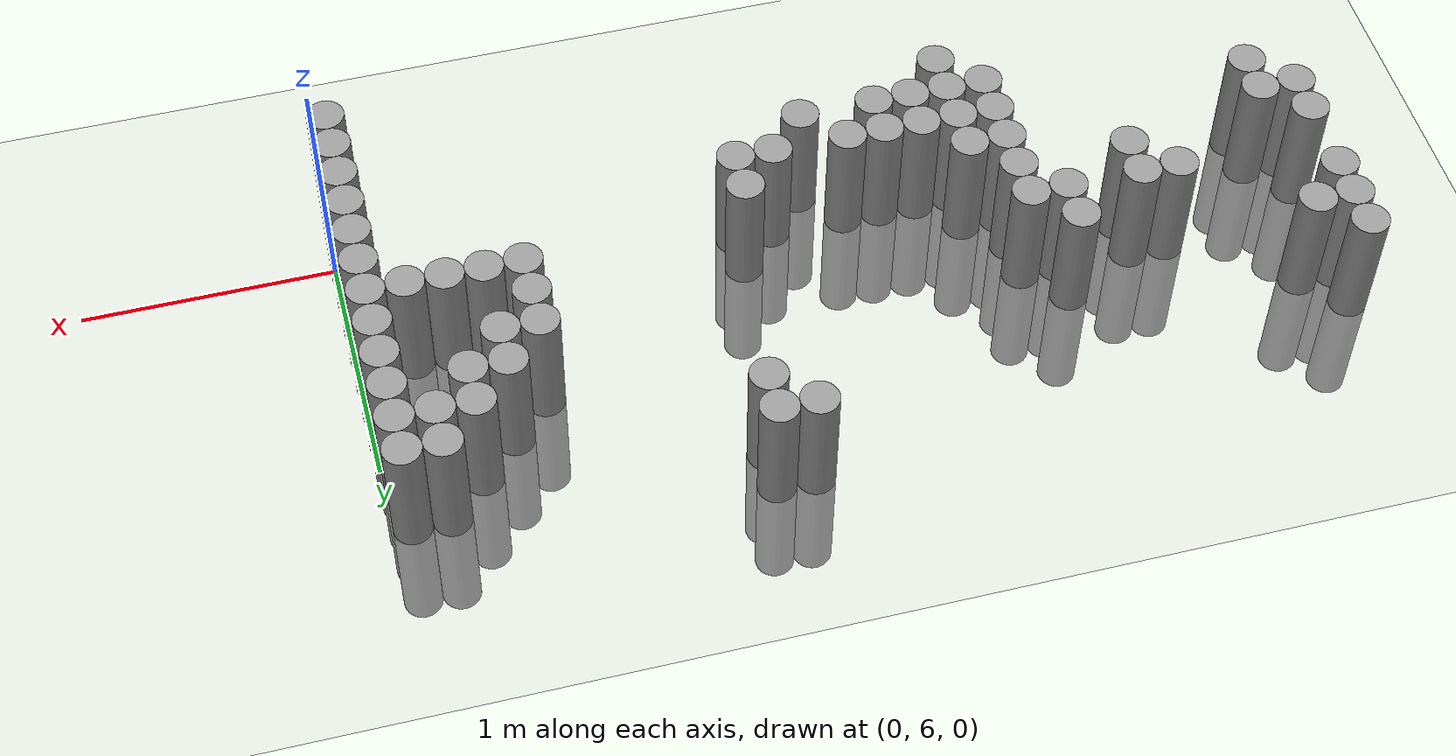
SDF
<sdf version="1.6">
 <world name="default">
  <model name="ground_plane">
   <static>1</static>
   <static>1</static>
   <link name="link">
    <collision name="collision">
     <geometry><plane><normal>0 0 1</normal><size>100 100</size></plane></geometry>
     <surface><friction><ode><mu>100</mu><mu2>50</mu2></ode></friction></surface>
    </collision>
    <visual name="visual">
     <cast_shadows>0</cast_shadows>
     <geometry><plane><normal>0 0 1</normal><size>100 100</size></plane></geometry>
     <material>
      <script><uri>file://media/materials/scripts/gazebo.material</uri><name>Gazebo/Grey</name></script>
     </material>
    </visual>
   </link>
  </model>
  <model name="unit_cylinder_160">
   <static>1</static>
   <pose>-3.825000 6.375000 0.000000 0.000000 0.000000 0.000000</pose>
   <link name="link">
    <inertial>
     <mass>1</mass>
     <inertia><ixx>0.145833</ixx><ixy>0</ixy><ixz>0</ixz><iyy>0.145833</iyy><iyz>0</iyz><izz>0.125</izz></inertia>
    </inertial>
    <collision name="collision">
     <geometry><cylinder><radius>0.075000</radius><length>1</length></cylinder></geometry>
    </collision>
    <visual name="visual">
     <geometry><cylinder><radius>0.075000</radius><length>1</length></cylinder></geometry>
     <material>
      <script><name>Gazebo/Grey</name><uri>file://media/materials/scripts/gazebo.material</uri></script>
     </material>
    </visual>
   </link>
  </model>
  <model name="unit_cylinder_161">
   <static>1</static>
   <pose>-3.825000 6.525000 0.000000 0.000000 0.000000 0.000000</pose>
   <link name="link">
    <inertial>
     <mass>1</mass>
     <inertia><ixx>0.145833</ixx><ixy>0</ixy><ixz>0</ixz><iyy>0.145833</iyy><iyz>0</iyz><izz>0.125</izz></inertia>
    </inertial>
    <collision name="collision">
     <geometry><cylinder><radius>0.075000</radius><length>1</length></cylinder></geometry>
    </collision>
    <visual name="visual">
     <geometry><cylinder><radius>0.075000</radius><length>1</length></cylinder></geometry>
     <material>
      <script><name>Gazebo/Grey</name><uri>file://media/materials/scripts/gazebo.material</uri></script>
     </material>
    </visual>
   </link>
  </model>
  <model name="unit_cylinder_162">
   <static>1</static>
   <pose>-3.825000 6.825000 0.000000 0.000000 0.000000 0.000000</pose>
   <link name="link">
    <inertial>
     <mass>1</mass>
     <inertia><ixx>0.145833</ixx><ixy>0</ixy><ixz>0</ixz><iyy>0.145833</iyy><iyz>0</iyz><izz>0.125</izz></inertia>
    </inertial>
    <collision name="collision">
     <geometry><cylinder><radius>0.075000</radius><length>1</length></cylinder></geometry>
    </collision>
    <visual name="visual">
     <geometry><cylinder><radius>0.075000</radius><length>1</length></cylinder></geometry>
     <material>
      <script><name>Gazebo/Grey</name><uri>file://media/materials/scripts/gazebo.material</uri></script>
     </material>
    </visual>
   </link>
  </model>
  <model name="unit_cylinder_163">
   <static>1</static>
   <pose>-3.825000 6.975000 0.000000 0.000000 0.000000 0.000000</pose>
   <link name="link">
    <inertial>
     <mass>1</mass>
     <inertia><ixx>0.145833</ixx><ixy>0</ixy><ixz>0</ixz><iyy>0.145833</iyy><iyz>0</iyz><izz>0.125</izz></inertia>
    </inertial>
    <collision name="collision">
     <geometry><cylinder><radius>0.075000</radius><length>1</length></cylinder></geometry>
    </collision>
    <visual name="visual">
     <geometry><cylinder><radius>0.075000</radius><length>1</length></cylinder></geometry>
     <material>
      <script><name>Gazebo/Grey</name><uri>file://media/materials/scripts/gazebo.material</uri></script>
     </material>
    </visual>
   </link>
  </model>
  <model name="unit_cylinder_164">
   <static>1</static>
   <pose>-3.825000 7.125000 0.000000 0.000000 0.000000 0.000000</pose>
   <link name="link">
    <inertial>
     <mass>1</mass>
     <inertia><ixx>0.145833</ixx><ixy>0</ixy><ixz>0</ixz><iyy>0.145833</iyy><iyz>0</iyz><izz>0.125</izz></inertia>
    </inertial>
    <collision name="collision">
     <geometry><cylinder><radius>0.075000</radius><length>1</length></cylinder></geometry>
    </collision>
    <visual name="visual">
     <geometry><cylinder><radius>0.075000</radius><length>1</length></cylinder></geometry>
     <material>
      <script><name>Gazebo/Grey</name><uri>file://media/materials/scripts/gazebo.material</uri></script>
     </material>
    </visual>
   </link>
  </model>
  <model name="unit_cylinder_167">
   <static>1</static>
   <pose>-3.675000 6.225000 0.000000 0.000000 0.000000 0.000000</pose>
   <link name="link">
    <inertial>
     <mass>1</mass>
     <inertia><ixx>0.145833</ixx><ixy>0</ixy><ixz>0</ixz><iyy>0.145833</iyy><iyz>0</iyz><izz>0.125</izz></inertia>
    </inertial>
    <collision name="collision">
     <geometry><cylinder><radius>0.075000</radius><length>1</length></cylinder></geometry>
    </collision>
    <visual name="visual">
     <geometry><cylinder><radius>0.075000</radius><length>1</length></cylinder></geometry>
     <material>
      <script><name>Gazebo/Grey</name><uri>file://media/materials/scripts/gazebo.material</uri></script>
     </material>
    </visual>
   </link>
  </model>
  <model name="unit_cylinder_168">
   <static>1</static>
   <pose>-3.675000 6.375000 0.000000 0.000000 0.000000 0.000000</pose>
   <link name="link">
    <inertial>
     <mass>1</mass>
     <inertia><ixx>0.145833</ixx><ixy>0</ixy><ixz>0</ixz><iyy>0.145833</iyy><iyz>0</iyz><izz>0.125</izz></inertia>
    </inertial>
    <collision name="collision">
     <geometry><cylinder><radius>0.075000</radius><length>1</length></cylinder></geometry>
    </collision>
    <visual name="visual">
     <geometry><cylinder><radius>0.075000</radius><length>1</length></cylinder></geometry>
     <material>
      <script><name>Gazebo/Grey</name><uri>file://media/materials/scripts/gazebo.material</uri></script>
     </material>
    </visual>
   </link>
  </model>
  <model name="unit_cylinder_169">
   <static>1</static>
   <pose>-3.675000 6.975000 0.000000 0.000000 0.000000 0.000000</pose>
   <link name="link">
    <inertial>
     <mass>1</mass>
     <inertia><ixx>0.145833</ixx><ixy>0</ixy><ixz>0</ixz><iyy>0.145833</iyy><iyz>0</iyz><izz>0.125</izz></inertia>
    </inertial>
    <collision name="collision">
     <geometry><cylinder><radius>0.075000</radius><length>1</length></cylinder></geometry>
    </collision>
    <visual name="visual">
     <geometry><cylinder><radius>0.075000</radius><length>1</length></cylinder></geometry>
     <material>
      <script><name>Gazebo/Grey</name><uri>file://media/materials/scripts/gazebo.material</uri></script>
     </material>
    </visual>
   </link>
  </model>
  <model name="unit_cylinder_170">
   <static>1</static>
   <pose>-3.225000 6.675000 0.000000 0.000000 0.000000 0.000000</pose>
   <link name="link">
    <inertial>
     <mass>1</mass>
     <inertia><ixx>0.145833</ixx><ixy>0</ixy><ixz>0</ixz><iyy>0.145833</iyy><iyz>0</iyz><izz>0.125</izz></inertia>
    </inertial>
    <collision name="collision">
     <geometry><cylinder><radius>0.075000</radius><length>1</length></cylinder></geometry>
    </collision>
    <visual name="visual">
     <geometry><cylinder><radius>0.075000</radius><length>1</length></cylinder></geometry>
     <material>
      <script><name>Gazebo/Grey</name><uri>file://media/materials/scripts/gazebo.material</uri></script>
     </material>
    </visual>
   </link>
  </model>
  <model name="unit_cylinder_173">
   <static>1</static>
   <pose>-3.075000 6.525000 0.000000 0.000000 0.000000 0.000000</pose>
   <link name="link">
    <inertial>
     <mass>1</mass>
     <inertia><ixx>0.145833</ixx><ixy>0</ixy><ixz>0</ixz><iyy>0.145833</iyy><iyz>0</iyz><izz>0.125</izz></inertia>
    </inertial>
    <collision name="collision">
     <geometry><cylinder><radius>0.075000</radius><length>1</length></cylinder></geometry>
    </collision>
    <visual name="visual">
     <geometry><cylinder><radius>0.075000</radius><length>1</length></cylinder></geometry>
     <material>
      <script><name>Gazebo/Grey</name><uri>file://media/materials/scripts/gazebo.material</uri></script>
     </material>
    </visual>
   </link>
  </model>
  <model name="unit_cylinder_174">
   <static>1</static>
   <pose>-3.075000 6.675000 0.000000 0.000000 0.000000 0.000000</pose>
   <link name="link">
    <inertial>
     <mass>1</mass>
     <inertia><ixx>0.145833</ixx><ixy>0</ixy><ixz>0</ixz><iyy>0.145833</iyy><iyz>0</iyz><izz>0.125</izz></inertia>
    </inertial>
    <collision name="collision">
     <geometry><cylinder><radius>0.075000</radius><length>1</length></cylinder></geometry>
    </collision>
    <visual name="visual">
     <geometry><cylinder><radius>0.075000</radius><length>1</length></cylinder></geometry>
     <material>
      <script><name>Gazebo/Grey</name><uri>file://media/materials/scripts/gazebo.material</uri></script>
     </material>
    </visual>
   </link>
  </model>
  <model name="unit_cylinder_181">
   <static>1</static>
   <pose>-2.775000 6.675000 0.000000 0.000000 0.000000 0.000000</pose>
   <link name="link">
    <inertial>
     <mass>1</mass>
     <inertia><ixx>0.145833</ixx><ixy>0</ixy><ixz>0</ixz><iyy>0.145833</iyy><iyz>0</iyz><izz>0.125</izz></inertia>
    </inertial>
    <collision name="collision">
     <geometry><cylinder><radius>0.075000</radius><length>1</length></cylinder></geometry>
    </collision>
    <visual name="visual">
     <geometry><cylinder><radius>0.075000</radius><length>1</length></cylinder></geometry>
     <material>
      <script><name>Gazebo/Grey</name><uri>file://media/materials/scripts/gazebo.material</uri></script>
     </material>
    </visual>
   </link>
  </model>
  <model name="unit_cylinder_182">
   <static>1</static>
   <pose>-2.775000 6.825000 0.000000 0.000000 0.000000 0.000000</pose>
   <link name="link">
    <inertial>
     <mass>1</mass>
     <inertia><ixx>0.145833</ixx><ixy>0</ixy><ixz>0</ixz><iyy>0.145833</iyy><iyz>0</iyz><izz>0.125</izz></inertia>
    </inertial>
    <collision name="collision">
     <geometry><cylinder><radius>0.075000</radius><length>1</length></cylinder></geometry>
    </collision>
    <visual name="visual">
     <geometry><cylinder><radius>0.075000</radius><length>1</length></cylinder></geometry>
     <material>
      <script><name>Gazebo/Grey</name><uri>file://media/materials/scripts/gazebo.material</uri></script>
     </material>
    </visual>
   </link>
  </model>
  <model name="unit_cylinder_184">
   <static>1</static>
   <pose>-2.625000 6.075000 0.000000 0.000000 0.000000 0.000000</pose>
   <link name="link">
    <inertial>
     <mass>1</mass>
     <inertia><ixx>0.145833</ixx><ixy>0</ixy><ixz>0</ixz><iyy>0.145833</iyy><iyz>0</iyz><izz>0.125</izz></inertia>
    </inertial>
    <collision name="collision">
     <geometry><cylinder><radius>0.075000</radius><length>1</length></cylinder></geometry>
    </collision>
    <visual name="visual">
     <geometry><cylinder><radius>0.075000</radius><length>1</length></cylinder></geometry>
     <material>
      <script><name>Gazebo/Grey</name><uri>file://media/materials/scripts/gazebo.material</uri></script>
     </material>
    </visual>
   </link>
  </model>
  <model name="unit_cylinder_185">
   <static>1</static>
   <pose>-2.625000 6.225000 0.000000 0.000000 0.000000 0.000000</pose>
   <link name="link">
    <inertial>
     <mass>1</mass>
     <inertia><ixx>0.145833</ixx><ixy>0</ixy><ixz>0</ixz><iyy>0.145833</iyy><iyz>0</iyz><izz>0.125</izz></inertia>
    </inertial>
    <collision name="collision">
     <geometry><cylinder><radius>0.075000</radius><length>1</length></cylinder></geometry>
    </collision>
    <visual name="visual">
     <geometry><cylinder><radius>0.075000</radius><length>1</length></cylinder></geometry>
     <material>
      <script><name>Gazebo/Grey</name><uri>file://media/materials/scripts/gazebo.material</uri></script>
     </material>
    </visual>
   </link>
  </model>
  <model name="unit_cylinder_186">
   <static>1</static>
   <pose>-2.625000 6.375000 0.000000 0.000000 0.000000 0.000000</pose>
   <link name="link">
    <inertial>
     <mass>1</mass>
     <inertia><ixx>0.145833</ixx><ixy>0</ixy><ixz>0</ixz><iyy>0.145833</iyy><iyz>0</iyz><izz>0.125</izz></inertia>
    </inertial>
    <collision name="collision">
     <geometry><cylinder><radius>0.075000</radius><length>1</length></cylinder></geometry>
    </collision>
    <visual name="visual">
     <geometry><cylinder><radius>0.075000</radius><length>1</length></cylinder></geometry>
     <material>
      <script><name>Gazebo/Grey</name><uri>file://media/materials/scripts/gazebo.material</uri></script>
     </material>
    </visual>
   </link>
  </model>
  <model name="unit_cylinder_187">
   <static>1</static>
   <pose>-2.625000 6.525000 0.000000 0.000000 0.000000 0.000000</pose>
   <link name="link">
    <inertial>
     <mass>1</mass>
     <inertia><ixx>0.145833</ixx><ixy>0</ixy><ixz>0</ixz><iyy>0.145833</iyy><iyz>0</iyz><izz>0.125</izz></inertia>
    </inertial>
    <collision name="collision">
     <geometry><cylinder><radius>0.075000</radius><length>1</length></cylinder></geometry>
    </collision>
    <visual name="visual">
     <geometry><cylinder><radius>0.075000</radius><length>1</length></cylinder></geometry>
     <material>
      <script><name>Gazebo/Grey</name><uri>file://media/materials/scripts/gazebo.material</uri></script>
     </material>
    </visual>
   </link>
  </model>
  <model name="unit_cylinder_188">
   <static>1</static>
   <pose>-2.625000 6.675000 0.000000 0.000000 0.000000 0.000000</pose>
   <link name="link">
    <inertial>
     <mass>1</mass>
     <inertia><ixx>0.145833</ixx><ixy>0</ixy><ixz>0</ixz><iyy>0.145833</iyy><iyz>0</iyz><izz>0.125</izz></inertia>
    </inertial>
    <collision name="collision">
     <geometry><cylinder><radius>0.075000</radius><length>1</length></cylinder></geometry>
    </collision>
    <visual name="visual">
     <geometry><cylinder><radius>0.075000</radius><length>1</length></cylinder></geometry>
     <material>
      <script><name>Gazebo/Grey</name><uri>file://media/materials/scripts/gazebo.material</uri></script>
     </material>
    </visual>
   </link>
  </model>
  <model name="unit_cylinder_189">
   <static>1</static>
   <pose>-2.475000 5.925000 0.000000 0.000000 0.000000 0.000000</pose>
   <link name="link">
    <inertial>
     <mass>1</mass>
     <inertia><ixx>0.145833</ixx><ixy>0</ixy><ixz>0</ixz><iyy>0.145833</iyy><iyz>0</iyz><izz>0.125</izz></inertia>
    </inertial>
    <collision name="collision">
     <geometry><cylinder><radius>0.075000</radius><length>1</length></cylinder></geometry>
    </collision>
    <visual name="visual">
     <geometry><cylinder><radius>0.075000</radius><length>1</length></cylinder></geometry>
     <material>
      <script><name>Gazebo/Grey</name><uri>file://media/materials/scripts/gazebo.material</uri></script>
     </material>
    </visual>
   </link>
  </model>
  <model name="unit_cylinder_190">
   <static>1</static>
   <pose>-2.475000 6.075000 0.000000 0.000000 0.000000 0.000000</pose>
   <link name="link">
    <inertial>
     <mass>1</mass>
     <inertia><ixx>0.145833</ixx><ixy>0</ixy><ixz>0</ixz><iyy>0.145833</iyy><iyz>0</iyz><izz>0.125</izz></inertia>
    </inertial>
    <collision name="collision">
     <geometry><cylinder><radius>0.075000</radius><length>1</length></cylinder></geometry>
    </collision>
    <visual name="visual">
     <geometry><cylinder><radius>0.075000</radius><length>1</length></cylinder></geometry>
     <material>
      <script><name>Gazebo/Grey</name><uri>file://media/materials/scripts/gazebo.material</uri></script>
     </material>
    </visual>
   </link>
  </model>
  <model name="unit_cylinder_191">
   <static>1</static>
   <pose>-2.475000 6.225000 0.000000 0.000000 0.000000 0.000000</pose>
   <link name="link">
    <inertial>
     <mass>1</mass>
     <inertia><ixx>0.145833</ixx><ixy>0</ixy><ixz>0</ixz><iyy>0.145833</iyy><iyz>0</iyz><izz>0.125</izz></inertia>
    </inertial>
    <collision name="collision">
     <geometry><cylinder><radius>0.075000</radius><length>1</length></cylinder></geometry>
    </collision>
    <visual name="visual">
     <geometry><cylinder><radius>0.075000</radius><length>1</length></cylinder></geometry>
     <material>
      <script><name>Gazebo/Grey</name><uri>file://media/materials/scripts/gazebo.material</uri></script>
     </material>
    </visual>
   </link>
  </model>
  <model name="unit_cylinder_192">
   <static>1</static>
   <pose>-2.475000 6.375000 0.000000 0.000000 0.000000 0.000000</pose>
   <link name="link">
    <inertial>
     <mass>1</mass>
     <inertia><ixx>0.145833</ixx><ixy>0</ixy><ixz>0</ixz><iyy>0.145833</iyy><iyz>0</iyz><izz>0.125</izz></inertia>
    </inertial>
    <collision name="collision">
     <geometry><cylinder><radius>0.075000</radius><length>1</length></cylinder></geometry>
    </collision>
    <visual name="visual">
     <geometry><cylinder><radius>0.075000</radius><length>1</length></cylinder></geometry>
     <material>
      <script><name>Gazebo/Grey</name><uri>file://media/materials/scripts/gazebo.material</uri></script>
     </material>
    </visual>
   </link>
  </model>
  <model name="unit_cylinder_193">
   <static>1</static>
   <pose>-2.325000 6.075000 0.000000 0.000000 0.000000 0.000000</pose>
   <link name="link">
    <inertial>
     <mass>1</mass>
     <inertia><ixx>0.145833</ixx><ixy>0</ixy><ixz>0</ixz><iyy>0.145833</iyy><iyz>0</iyz><izz>0.125</izz></inertia>
    </inertial>
    <collision name="collision">
     <geometry><cylinder><radius>0.075000</radius><length>1</length></cylinder></geometry>
    </collision>
    <visual name="visual">
     <geometry><cylinder><radius>0.075000</radius><length>1</length></cylinder></geometry>
     <material>
      <script><name>Gazebo/Grey</name><uri>file://media/materials/scripts/gazebo.material</uri></script>
     </material>
    </visual>
   </link>
  </model>
  <model name="unit_cylinder_194">
   <static>1</static>
   <pose>-2.325000 6.225000 0.000000 0.000000 0.000000 0.000000</pose>
   <link name="link">
    <inertial>
     <mass>1</mass>
     <inertia><ixx>0.145833</ixx><ixy>0</ixy><ixz>0</ixz><iyy>0.145833</iyy><iyz>0</iyz><izz>0.125</izz></inertia>
    </inertial>
    <collision name="collision">
     <geometry><cylinder><radius>0.075000</radius><length>1</length></cylinder></geometry>
    </collision>
    <visual name="visual">
     <geometry><cylinder><radius>0.075000</radius><length>1</length></cylinder></geometry>
     <material>
      <script><name>Gazebo/Grey</name><uri>file://media/materials/scripts/gazebo.material</uri></script>
     </material>
    </visual>
   </link>
  </model>
  <model name="unit_cylinder_196">
   <static>1</static>
   <pose>-2.175000 6.075000 0.000000 0.000000 0.000000 0.000000</pose>
   <link name="link">
    <inertial>
     <mass>1</mass>
     <inertia><ixx>0.145833</ixx><ixy>0</ixy><ixz>0</ixz><iyy>0.145833</iyy><iyz>0</iyz><izz>0.125</izz></inertia>
    </inertial>
    <collision name="collision">
     <geometry><cylinder><radius>0.075000</radius><length>1</length></cylinder></geometry>
    </collision>
    <visual name="visual">
     <geometry><cylinder><radius>0.075000</radius><length>1</length></cylinder></geometry>
     <material>
      <script><name>Gazebo/Grey</name><uri>file://media/materials/scripts/gazebo.material</uri></script>
     </material>
    </visual>
   </link>
  </model>
  <model name="unit_cylinder_197">
   <static>1</static>
   <pose>-2.175000 6.225000 0.000000 0.000000 0.000000 0.000000</pose>
   <link name="link">
    <inertial>
     <mass>1</mass>
     <inertia><ixx>0.145833</ixx><ixy>0</ixy><ixz>0</ixz><iyy>0.145833</iyy><iyz>0</iyz><izz>0.125</izz></inertia>
    </inertial>
    <collision name="collision">
     <geometry><cylinder><radius>0.075000</radius><length>1</length></cylinder></geometry>
    </collision>
    <visual name="visual">
     <geometry><cylinder><radius>0.075000</radius><length>1</length></cylinder></geometry>
     <material>
      <script><name>Gazebo/Grey</name><uri>file://media/materials/scripts/gazebo.material</uri></script>
     </material>
    </visual>
   </link>
  </model>
  <model name="unit_cylinder_200">
   <static>1</static>
   <pose>-2.025000 6.225000 0.000000 0.000000 0.000000 0.000000</pose>
   <link name="link">
    <inertial>
     <mass>1</mass>
     <inertia><ixx>0.145833</ixx><ixy>0</ixy><ixz>0</ixz><iyy>0.145833</iyy><iyz>0</iyz><izz>0.125</izz></inertia>
    </inertial>
    <collision name="collision">
     <geometry><cylinder><radius>0.075000</radius><length>1</length></cylinder></geometry>
    </collision>
    <visual name="visual">
     <geometry><cylinder><radius>0.075000</radius><length>1</length></cylinder></geometry>
     <material>
      <script><name>Gazebo/Grey</name><uri>file://media/materials/scripts/gazebo.material</uri></script>
     </material>
    </visual>
   </link>
  </model>
  <model name="unit_cylinder_204">
   <static>1</static>
   <pose>-1.875000 6.075000 0.000000 0.000000 0.000000 0.000000</pose>
   <link name="link">
    <inertial>
     <mass>1</mass>
     <inertia><ixx>0.145833</ixx><ixy>0</ixy><ixz>0</ixz><iyy>0.145833</iyy><iyz>0</iyz><izz>0.125</izz></inertia>
    </inertial>
    <collision name="collision">
     <geometry><cylinder><radius>0.075000</radius><length>1</length></cylinder></geometry>
    </collision>
    <visual name="visual">
     <geometry><cylinder><radius>0.075000</radius><length>1</length></cylinder></geometry>
     <material>
      <script><name>Gazebo/Grey</name><uri>file://media/materials/scripts/gazebo.material</uri></script>
     </material>
    </visual>
   </link>
  </model>
  <model name="unit_cylinder_209">
   <static>1</static>
   <pose>-1.725000 6.225000 0.000000 0.000000 0.000000 0.000000</pose>
   <link name="link">
    <inertial>
     <mass>1</mass>
     <inertia><ixx>0.145833</ixx><ixy>0</ixy><ixz>0</ixz><iyy>0.145833</iyy><iyz>0</iyz><izz>0.125</izz></inertia>
    </inertial>
    <collision name="collision">
     <geometry><cylinder><radius>0.075000</radius><length>1</length></cylinder></geometry>
    </collision>
    <visual name="visual">
     <geometry><cylinder><radius>0.075000</radius><length>1</length></cylinder></geometry>
     <material>
      <script><name>Gazebo/Grey</name><uri>file://media/materials/scripts/gazebo.material</uri></script>
     </material>
    </visual>
   </link>
  </model>
  <model name="unit_cylinder_211">
   <static>1</static>
   <pose>-1.575000 6.225000 0.000000 0.000000 0.000000 0.000000</pose>
   <link name="link">
    <inertial>
     <mass>1</mass>
     <inertia><ixx>0.145833</ixx><ixy>0</ixy><ixz>0</ixz><iyy>0.145833</iyy><iyz>0</iyz><izz>0.125</izz></inertia>
    </inertial>
    <collision name="collision">
     <geometry><cylinder><radius>0.075000</radius><length>1</length></cylinder></geometry>
    </collision>
    <visual name="visual">
     <geometry><cylinder><radius>0.075000</radius><length>1</length></cylinder></geometry>
     <material>
      <script><name>Gazebo/Grey</name><uri>file://media/materials/scripts/gazebo.material</uri></script>
     </material>
    </visual>
   </link>
  </model>
  <model name="unit_cylinder_212">
   <static>1</static>
   <pose>-1.575000 6.375000 0.000000 0.000000 0.000000 0.000000</pose>
   <link name="link">
    <inertial>
     <mass>1</mass>
     <inertia><ixx>0.145833</ixx><ixy>0</ixy><ixz>0</ixz><iyy>0.145833</iyy><iyz>0</iyz><izz>0.125</izz></inertia>
    </inertial>
    <collision name="collision">
     <geometry><cylinder><radius>0.075000</radius><length>1</length></cylinder></geometry>
    </collision>
    <visual name="visual">
     <geometry><cylinder><radius>0.075000</radius><length>1</length></cylinder></geometry>
     <material>
      <script><name>Gazebo/Grey</name><uri>file://media/materials/scripts/gazebo.material</uri></script>
     </material>
    </visual>
   </link>
  </model>
  <model name="unit_cylinder_213">
   <static>1</static>
   <pose>-1.575000 7.425000 0.000000 0.000000 0.000000 0.000000</pose>
   <link name="link">
    <inertial>
     <mass>1</mass>
     <inertia><ixx>0.145833</ixx><ixy>0</ixy><ixz>0</ixz><iyy>0.145833</iyy><iyz>0</iyz><izz>0.125</izz></inertia>
    </inertial>
    <collision name="collision">
     <geometry><cylinder><radius>0.075000</radius><length>1</length></cylinder></geometry>
    </collision>
    <visual name="visual">
     <geometry><cylinder><radius>0.075000</radius><length>1</length></cylinder></geometry>
     <material>
      <script><name>Gazebo/Grey</name><uri>file://media/materials/scripts/gazebo.material</uri></script>
     </material>
    </visual>
   </link>
  </model>
  <model name="unit_cylinder_214">
   <static>1</static>
   <pose>-1.425000 7.275000 0.000000 0.000000 0.000000 0.000000</pose>
   <link name="link">
    <inertial>
     <mass>1</mass>
     <inertia><ixx>0.145833</ixx><ixy>0</ixy><ixz>0</ixz><iyy>0.145833</iyy><iyz>0</iyz><izz>0.125</izz></inertia>
    </inertial>
    <collision name="collision">
     <geometry><cylinder><radius>0.075000</radius><length>1</length></cylinder></geometry>
    </collision>
    <visual name="visual">
     <geometry><cylinder><radius>0.075000</radius><length>1</length></cylinder></geometry>
     <material>
      <script><name>Gazebo/Grey</name><uri>file://media/materials/scripts/gazebo.material</uri></script>
     </material>
    </visual>
   </link>
  </model>
  <model name="unit_cylinder_215">
   <static>1</static>
   <pose>-1.425000 7.425000 0.000000 0.000000 0.000000 0.000000</pose>
   <link name="link">
    <inertial>
     <mass>1</mass>
     <inertia><ixx>0.145833</ixx><ixy>0</ixy><ixz>0</ixz><iyy>0.145833</iyy><iyz>0</iyz><izz>0.125</izz></inertia>
    </inertial>
    <collision name="collision">
     <geometry><cylinder><radius>0.075000</radius><length>1</length></cylinder></geometry>
    </collision>
    <visual name="visual">
     <geometry><cylinder><radius>0.075000</radius><length>1</length></cylinder></geometry>
     <material>
      <script><name>Gazebo/Grey</name><uri>file://media/materials/scripts/gazebo.material</uri></script>
     </material>
    </visual>
   </link>
  </model>
  <model name="unit_cylinder_226">
   <static>1</static>
   <pose>-0.675000 6.525000 0.000000 0.000000 0.000000 0.000000</pose>
   <link name="link">
    <inertial>
     <mass>1</mass>
     <inertia><ixx>0.145833</ixx><ixy>0</ixy><ixz>0</ixz><iyy>0.145833</iyy><iyz>0</iyz><izz>0.125</izz></inertia>
    </inertial>
    <collision name="collision">
     <geometry><cylinder><radius>0.075000</radius><length>1</length></cylinder></geometry>
    </collision>
    <visual name="visual">
     <geometry><cylinder><radius>0.075000</radius><length>1</length></cylinder></geometry>
     <material>
      <script><name>Gazebo/Grey</name><uri>file://media/materials/scripts/gazebo.material</uri></script>
     </material>
    </visual>
   </link>
  </model>
  <model name="unit_cylinder_227">
   <static>1</static>
   <pose>-0.675000 6.675000 0.000000 0.000000 0.000000 0.000000</pose>
   <link name="link">
    <inertial>
     <mass>1</mass>
     <inertia><ixx>0.145833</ixx><ixy>0</ixy><ixz>0</ixz><iyy>0.145833</iyy><iyz>0</iyz><izz>0.125</izz></inertia>
    </inertial>
    <collision name="collision">
     <geometry><cylinder><radius>0.075000</radius><length>1</length></cylinder></geometry>
    </collision>
    <visual name="visual">
     <geometry><cylinder><radius>0.075000</radius><length>1</length></cylinder></geometry>
     <material>
      <script><name>Gazebo/Grey</name><uri>file://media/materials/scripts/gazebo.material</uri></script>
     </material>
    </visual>
   </link>
  </model>
  <model name="unit_cylinder_228">
   <static>1</static>
   <pose>-0.675000 6.825000 0.000000 0.000000 0.000000 0.000000</pose>
   <link name="link">
    <inertial>
     <mass>1</mass>
     <inertia><ixx>0.145833</ixx><ixy>0</ixy><ixz>0</ixz><iyy>0.145833</iyy><iyz>0</iyz><izz>0.125</izz></inertia>
    </inertial>
    <collision name="collision">
     <geometry><cylinder><radius>0.075000</radius><length>1</length></cylinder></geometry>
    </collision>
    <visual name="visual">
     <geometry><cylinder><radius>0.075000</radius><length>1</length></cylinder></geometry>
     <material>
      <script><name>Gazebo/Grey</name><uri>file://media/materials/scripts/gazebo.material</uri></script>
     </material>
    </visual>
   </link>
  </model>
  <model name="unit_cylinder_232">
   <static>1</static>
   <pose>-0.525000 6.525000 0.000000 0.000000 0.000000 0.000000</pose>
   <link name="link">
    <inertial>
     <mass>1</mass>
     <inertia><ixx>0.145833</ixx><ixy>0</ixy><ixz>0</ixz><iyy>0.145833</iyy><iyz>0</iyz><izz>0.125</izz></inertia>
    </inertial>
    <collision name="collision">
     <geometry><cylinder><radius>0.075000</radius><length>1</length></cylinder></geometry>
    </collision>
    <visual name="visual">
     <geometry><cylinder><radius>0.075000</radius><length>1</length></cylinder></geometry>
     <material>
      <script><name>Gazebo/Grey</name><uri>file://media/materials/scripts/gazebo.material</uri></script>
     </material>
    </visual>
   </link>
  </model>
  <model name="unit_cylinder_233">
   <static>1</static>
   <pose>-0.525000 6.825000 0.000000 0.000000 0.000000 0.000000</pose>
   <link name="link">
    <inertial>
     <mass>1</mass>
     <inertia><ixx>0.145833</ixx><ixy>0</ixy><ixz>0</ixz><iyy>0.145833</iyy><iyz>0</iyz><izz>0.125</izz></inertia>
    </inertial>
    <collision name="collision">
     <geometry><cylinder><radius>0.075000</radius><length>1</length></cylinder></geometry>
    </collision>
    <visual name="visual">
     <geometry><cylinder><radius>0.075000</radius><length>1</length></cylinder></geometry>
     <material>
      <script><name>Gazebo/Grey</name><uri>file://media/materials/scripts/gazebo.material</uri></script>
     </material>
    </visual>
   </link>
  </model>
  <model name="unit_cylinder_234">
   <static>1</static>
   <pose>-0.525000 6.975000 0.000000 0.000000 0.000000 0.000000</pose>
   <link name="link">
    <inertial>
     <mass>1</mass>
     <inertia><ixx>0.145833</ixx><ixy>0</ixy><ixz>0</ixz><iyy>0.145833</iyy><iyz>0</iyz><izz>0.125</izz></inertia>
    </inertial>
    <collision name="collision">
     <geometry><cylinder><radius>0.075000</radius><length>1</length></cylinder></geometry>
    </collision>
    <visual name="visual">
     <geometry><cylinder><radius>0.075000</radius><length>1</length></cylinder></geometry>
     <material>
      <script><name>Gazebo/Grey</name><uri>file://media/materials/scripts/gazebo.material</uri></script>
     </material>
    </visual>
   </link>
  </model>
  <model name="unit_cylinder_239">
   <static>1</static>
   <pose>-0.375000 6.525000 0.000000 0.000000 0.000000 0.000000</pose>
   <link name="link">
    <inertial>
     <mass>1</mass>
     <inertia><ixx>0.145833</ixx><ixy>0</ixy><ixz>0</ixz><iyy>0.145833</iyy><iyz>0</iyz><izz>0.125</izz></inertia>
    </inertial>
    <collision name="collision">
     <geometry><cylinder><radius>0.075000</radius><length>1</length></cylinder></geometry>
    </collision>
    <visual name="visual">
     <geometry><cylinder><radius>0.075000</radius><length>1</length></cylinder></geometry>
     <material>
      <script><name>Gazebo/Grey</name><uri>file://media/materials/scripts/gazebo.material</uri></script>
     </material>
    </visual>
   </link>
  </model>
  <model name="unit_cylinder_240">
   <static>1</static>
   <pose>-0.375000 6.975000 0.000000 0.000000 0.000000 0.000000</pose>
   <link name="link">
    <inertial>
     <mass>1</mass>
     <inertia><ixx>0.145833</ixx><ixy>0</ixy><ixz>0</ixz><iyy>0.145833</iyy><iyz>0</iyz><izz>0.125</izz></inertia>
    </inertial>
    <collision name="collision">
     <geometry><cylinder><radius>0.075000</radius><length>1</length></cylinder></geometry>
    </collision>
    <visual name="visual">
     <geometry><cylinder><radius>0.075000</radius><length>1</length></cylinder></geometry>
     <material>
      <script><name>Gazebo/Grey</name><uri>file://media/materials/scripts/gazebo.material</uri></script>
     </material>
    </visual>
   </link>
  </model>
  <model name="unit_cylinder_241">
   <static>1</static>
   <pose>-0.375000 7.125000 0.000000 0.000000 0.000000 0.000000</pose>
   <link name="link">
    <inertial>
     <mass>1</mass>
     <inertia><ixx>0.145833</ixx><ixy>0</ixy><ixz>0</ixz><iyy>0.145833</iyy><iyz>0</iyz><izz>0.125</izz></inertia>
    </inertial>
    <collision name="collision">
     <geometry><cylinder><radius>0.075000</radius><length>1</length></cylinder></geometry>
    </collision>
    <visual name="visual">
     <geometry><cylinder><radius>0.075000</radius><length>1</length></cylinder></geometry>
     <material>
      <script><name>Gazebo/Grey</name><uri>file://media/materials/scripts/gazebo.material</uri></script>
     </material>
    </visual>
   </link>
  </model>
  <model name="unit_cylinder_250">
   <static>1</static>
   <pose>-0.225000 6.525000 0.000000 0.000000 0.000000 0.000000</pose>
   <link name="link">
    <inertial>
     <mass>1</mass>
     <inertia><ixx>0.145833</ixx><ixy>0</ixy><ixz>0</ixz><iyy>0.145833</iyy><iyz>0</iyz><izz>0.125</izz></inertia>
    </inertial>
    <collision name="collision">
     <geometry><cylinder><radius>0.075000</radius><length>1</length></cylinder></geometry>
    </collision>
    <visual name="visual">
     <geometry><cylinder><radius>0.075000</radius><length>1</length></cylinder></geometry>
     <material>
      <script><name>Gazebo/Grey</name><uri>file://media/materials/scripts/gazebo.material</uri></script>
     </material>
    </visual>
   </link>
  </model>
  <model name="unit_cylinder_251">
   <static>1</static>
   <pose>-0.225000 7.125000 0.000000 0.000000 0.000000 0.000000</pose>
   <link name="link">
    <inertial>
     <mass>1</mass>
     <inertia><ixx>0.145833</ixx><ixy>0</ixy><ixz>0</ixz><iyy>0.145833</iyy><iyz>0</iyz><izz>0.125</izz></inertia>
    </inertial>
    <collision name="collision">
     <geometry><cylinder><radius>0.075000</radius><length>1</length></cylinder></geometry>
    </collision>
    <visual name="visual">
     <geometry><cylinder><radius>0.075000</radius><length>1</length></cylinder></geometry>
     <material>
      <script><name>Gazebo/Grey</name><uri>file://media/materials/scripts/gazebo.material</uri></script>
     </material>
    </visual>
   </link>
  </model>
  <model name="unit_cylinder_252">
   <static>1</static>
   <pose>-0.225000 7.275000 0.000000 0.000000 0.000000 0.000000</pose>
   <link name="link">
    <inertial>
     <mass>1</mass>
     <inertia><ixx>0.145833</ixx><ixy>0</ixy><ixz>0</ixz><iyy>0.145833</iyy><iyz>0</iyz><izz>0.125</izz></inertia>
    </inertial>
    <collision name="collision">
     <geometry><cylinder><radius>0.075000</radius><length>1</length></cylinder></geometry>
    </collision>
    <visual name="visual">
     <geometry><cylinder><radius>0.075000</radius><length>1</length></cylinder></geometry>
     <material>
      <script><name>Gazebo/Grey</name><uri>file://media/materials/scripts/gazebo.material</uri></script>
     </material>
    </visual>
   </link>
  </model>
  <model name="unit_cylinder_265">
   <static>1</static>
   <pose>-0.075000 5.625000 0.000000 0.000000 0.000000 0.000000</pose>
   <link name="link">
    <inertial>
     <mass>1</mass>
     <inertia><ixx>0.145833</ixx><ixy>0</ixy><ixz>0</ixz><iyy>0.145833</iyy><iyz>0</iyz><izz>0.125</izz></inertia>
    </inertial>
    <collision name="collision">
     <geometry><cylinder><radius>0.075000</radius><length>1</length></cylinder></geometry>
    </collision>
    <visual name="visual">
     <geometry><cylinder><radius>0.075000</radius><length>1</length></cylinder></geometry>
     <material>
      <script><name>Gazebo/Grey</name><uri>file://media/materials/scripts/gazebo.material</uri></script>
     </material>
    </visual>
   </link>
  </model>
  <model name="unit_cylinder_266">
   <static>1</static>
   <pose>-0.075000 5.775000 0.000000 0.000000 0.000000 0.000000</pose>
   <link name="link">
    <inertial>
     <mass>1</mass>
     <inertia><ixx>0.145833</ixx><ixy>0</ixy><ixz>0</ixz><iyy>0.145833</iyy><iyz>0</iyz><izz>0.125</izz></inertia>
    </inertial>
    <collision name="collision">
     <geometry><cylinder><radius>0.075000</radius><length>1</length></cylinder></geometry>
    </collision>
    <visual name="visual">
     <geometry><cylinder><radius>0.075000</radius><length>1</length></cylinder></geometry>
     <material>
      <script><name>Gazebo/Grey</name><uri>file://media/materials/scripts/gazebo.material</uri></script>
     </material>
    </visual>
   </link>
  </model>
  <model name="unit_cylinder_267">
   <static>1</static>
   <pose>-0.075000 5.925000 0.000000 0.000000 0.000000 0.000000</pose>
   <link name="link">
    <inertial>
     <mass>1</mass>
     <inertia><ixx>0.145833</ixx><ixy>0</ixy><ixz>0</ixz><iyy>0.145833</iyy><iyz>0</iyz><izz>0.125</izz></inertia>
    </inertial>
    <collision name="collision">
     <geometry><cylinder><radius>0.075000</radius><length>1</length></cylinder></geometry>
    </collision>
    <visual name="visual">
     <geometry><cylinder><radius>0.075000</radius><length>1</length></cylinder></geometry>
     <material>
      <script><name>Gazebo/Grey</name><uri>file://media/materials/scripts/gazebo.material</uri></script>
     </material>
    </visual>
   </link>
  </model>
  <model name="unit_cylinder_268">
   <static>1</static>
   <pose>-0.075000 6.075000 0.000000 0.000000 0.000000 0.000000</pose>
   <link name="link">
    <inertial>
     <mass>1</mass>
     <inertia><ixx>0.145833</ixx><ixy>0</ixy><ixz>0</ixz><iyy>0.145833</iyy><iyz>0</iyz><izz>0.125</izz></inertia>
    </inertial>
    <collision name="collision">
     <geometry><cylinder><radius>0.075000</radius><length>1</length></cylinder></geometry>
    </collision>
    <visual name="visual">
     <geometry><cylinder><radius>0.075000</radius><length>1</length></cylinder></geometry>
     <material>
      <script><name>Gazebo/Grey</name><uri>file://media/materials/scripts/gazebo.material</uri></script>
     </material>
    </visual>
   </link>
  </model>
  <model name="unit_cylinder_269">
   <static>1</static>
   <pose>-0.075000 6.225000 0.000000 0.000000 0.000000 0.000000</pose>
   <link name="link">
    <inertial>
     <mass>1</mass>
     <inertia><ixx>0.145833</ixx><ixy>0</ixy><ixz>0</ixz><iyy>0.145833</iyy><iyz>0</iyz><izz>0.125</izz></inertia>
    </inertial>
    <collision name="collision">
     <geometry><cylinder><radius>0.075000</radius><length>1</length></cylinder></geometry>
    </collision>
    <visual name="visual">
     <geometry><cylinder><radius>0.075000</radius><length>1</length></cylinder></geometry>
     <material>
      <script><name>Gazebo/Grey</name><uri>file://media/materials/scripts/gazebo.material</uri></script>
     </material>
    </visual>
   </link>
  </model>
  <model name="unit_cylinder_270">
   <static>1</static>
   <pose>-0.075000 6.375000 0.000000 0.000000 0.000000 0.000000</pose>
   <link name="link">
    <inertial>
     <mass>1</mass>
     <inertia><ixx>0.145833</ixx><ixy>0</ixy><ixz>0</ixz><iyy>0.145833</iyy><iyz>0</iyz><izz>0.125</izz></inertia>
    </inertial>
    <collision name="collision">
     <geometry><cylinder><radius>0.075000</radius><length>1</length></cylinder></geometry>
    </collision>
    <visual name="visual">
     <geometry><cylinder><radius>0.075000</radius><length>1</length></cylinder></geometry>
     <material>
      <script><name>Gazebo/Grey</name><uri>file://media/materials/scripts/gazebo.material</uri></script>
     </material>
    </visual>
   </link>
  </model>
  <model name="unit_cylinder_271">
   <static>1</static>
   <pose>-0.075000 6.525000 0.000000 0.000000 0.000000 0.000000</pose>
   <link name="link">
    <inertial>
     <mass>1</mass>
     <inertia><ixx>0.145833</ixx><ixy>0</ixy><ixz>0</ixz><iyy>0.145833</iyy><iyz>0</iyz><izz>0.125</izz></inertia>
    </inertial>
    <collision name="collision">
     <geometry><cylinder><radius>0.075000</radius><length>1</length></cylinder></geometry>
    </collision>
    <visual name="visual">
     <geometry><cylinder><radius>0.075000</radius><length>1</length></cylinder></geometry>
     <material>
      <script><name>Gazebo/Grey</name><uri>file://media/materials/scripts/gazebo.material</uri></script>
     </material>
    </visual>
   </link>
  </model>
  <model name="unit_cylinder_272">
   <static>1</static>
   <pose>-0.075000 6.675000 0.000000 0.000000 0.000000 0.000000</pose>
   <link name="link">
    <inertial>
     <mass>1</mass>
     <inertia><ixx>0.145833</ixx><ixy>0</ixy><ixz>0</ixz><iyy>0.145833</iyy><iyz>0</iyz><izz>0.125</izz></inertia>
    </inertial>
    <collision name="collision">
     <geometry><cylinder><radius>0.075000</radius><length>1</length></cylinder></geometry>
    </collision>
    <visual name="visual">
     <geometry><cylinder><radius>0.075000</radius><length>1</length></cylinder></geometry>
     <material>
      <script><name>Gazebo/Grey</name><uri>file://media/materials/scripts/gazebo.material</uri></script>
     </material>
    </visual>
   </link>
  </model>
  <model name="unit_cylinder_273">
   <static>1</static>
   <pose>-0.075000 6.825000 0.000000 0.000000 0.000000 0.000000</pose>
   <link name="link">
    <inertial>
     <mass>1</mass>
     <inertia><ixx>0.145833</ixx><ixy>0</ixy><ixz>0</ixz><iyy>0.145833</iyy><iyz>0</iyz><izz>0.125</izz></inertia>
    </inertial>
    <collision name="collision">
     <geometry><cylinder><radius>0.075000</radius><length>1</length></cylinder></geometry>
    </collision>
    <visual name="visual">
     <geometry><cylinder><radius>0.075000</radius><length>1</length></cylinder></geometry>
     <material>
      <script><name>Gazebo/Grey</name><uri>file://media/materials/scripts/gazebo.material</uri></script>
     </material>
    </visual>
   </link>
  </model>
  <model name="unit_cylinder_274">
   <static>1</static>
   <pose>-0.075000 6.975000 0.000000 0.000000 0.000000 0.000000</pose>
   <link name="link">
    <inertial>
     <mass>1</mass>
     <inertia><ixx>0.145833</ixx><ixy>0</ixy><ixz>0</ixz><iyy>0.145833</iyy><iyz>0</iyz><izz>0.125</izz></inertia>
    </inertial>
    <collision name="collision">
     <geometry><cylinder><radius>0.075000</radius><length>1</length></cylinder></geometry>
    </collision>
    <visual name="visual">
     <geometry><cylinder><radius>0.075000</radius><length>1</length></cylinder></geometry>
     <material>
      <script><name>Gazebo/Grey</name><uri>file://media/materials/scripts/gazebo.material</uri></script>
     </material>
    </visual>
   </link>
  </model>
  <model name="unit_cylinder_275">
   <static>1</static>
   <pose>-0.075000 7.125000 0.000000 0.000000 0.000000 0.000000</pose>
   <link name="link">
    <inertial>
     <mass>1</mass>
     <inertia><ixx>0.145833</ixx><ixy>0</ixy><ixz>0</ixz><iyy>0.145833</iyy><iyz>0</iyz><izz>0.125</izz></inertia>
    </inertial>
    <collision name="collision">
     <geometry><cylinder><radius>0.075000</radius><length>1</length></cylinder></geometry>
    </collision>
    <visual name="visual">
     <geometry><cylinder><radius>0.075000</radius><length>1</length></cylinder></geometry>
     <material>
      <script><name>Gazebo/Grey</name><uri>file://media/materials/scripts/gazebo.material</uri></script>
     </material>
    </visual>
   </link>
  </model>
  <model name="unit_cylinder_276">
   <static>1</static>
   <pose>-0.075000 7.275000 0.000000 0.000000 0.000000 0.000000</pose>
   <link name="link">
    <inertial>
     <mass>1</mass>
     <inertia><ixx>0.145833</ixx><ixy>0</ixy><ixz>0</ixz><iyy>0.145833</iyy><iyz>0</iyz><izz>0.125</izz></inertia>
    </inertial>
    <collision name="collision">
     <geometry><cylinder><radius>0.075000</radius><length>1</length></cylinder></geometry>
    </collision>
    <visual name="visual">
     <geometry><cylinder><radius>0.075000</radius><length>1</length></cylinder></geometry>
     <material>
      <script><name>Gazebo/Grey</name><uri>file://media/materials/scripts/gazebo.material</uri></script>
     </material>
    </visual>
   </link>
  </model>
 </world>
</sdf>
